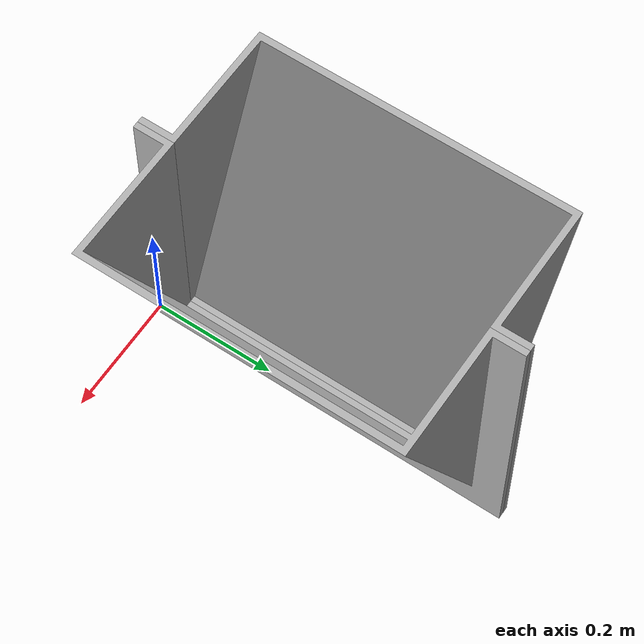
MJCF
<mujoco model="SAMPLEBAG">
  <compiler angle="radian"/>

  <asset>
    <mesh name="base_link" content_type="model/stl" file="base_link.stl" scale="0.001 0.001 0.001"/>
    <mesh name="base_link_Mirror__1" content_type="model/stl" file="base_link_Mirror__1.stl" scale=".001 .001 .001"/>
  </asset>

  <worldbody>
    <geom type="mesh" rgba="0.7 0.7 0.7 1" mesh="base_link"/>
    <geom type="mesh" rgba="0.7 0.7 0.7 1" mesh="base_link_Mirror__1"/>
  </worldbody>
</mujoco>
